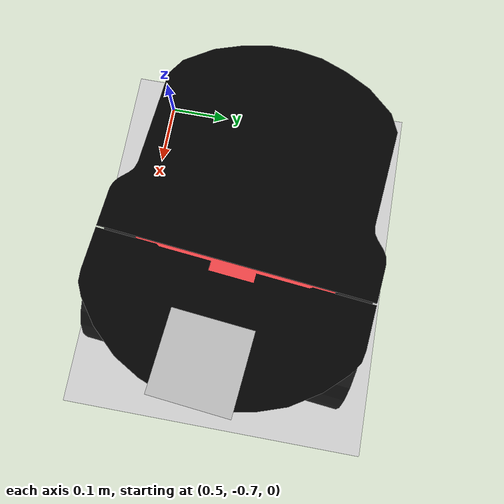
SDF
<sdf version="1.7">
 <world name="default">
  <model name="ground_plane">
   <static>1</static>
   <link name="link">
    <collision name="collision">
     <geometry><plane><normal>0 0 1</normal><size>100 100</size></plane></geometry>
     <surface>
      <contact><collide_bitmask>65535</collide_bitmask></contact>
      <friction><ode><mu>100</mu><mu2>50</mu2></ode></friction>
     </surface>
    </collision>
    <visual name="visual">
     <cast_shadows>0</cast_shadows>
     <geometry><plane><normal>0 0 1</normal><size>100 100</size></plane></geometry>
     <material>
      <script><uri>file://media/materials/scripts/gazebo.material</uri><name>Gazebo/Grey</name></script>
     </material>
    </visual>
   </link>
  </model>
  <light name="sun" type="directional">
   <pose>0 0 10 0 -0 0</pose>
   <diffuse>0.8 0.8 0.8 1</diffuse>
   <specular>0.2 0.2 0.2 1</specular>
   <attenuation>
    <range>1000</range>
    <constant>0.9</constant>
    <linear>0.01</linear>
    <quadratic>0.001</quadratic>
   </attenuation>
   <direction>-0.5 0.1 -0.9</direction>
   <spot><inner_angle>0</inner_angle><outer_angle>0</outer_angle><falloff>0</falloff></spot>
  </light>
  <model name="pioneer2dx">
   <pose>0.746747 -0.51605 -2e-06 1e-06 1.2e-05 -0.096164</pose>
   <frame name="pioneer2dx::__model__" attached_to="pioneer2dx::chassis">
    <pose relative_to="__model__">0 0 0 0 -0 0</pose>
   </frame>
   <link name="pioneer2dx::chassis">
    <pose relative_to="pioneer2dx::__model__">0 0 0.16 0 -0 0</pose>
    <inertial>
     <mass>5.67</mass>
     <inertia><ixx>0.07</ixx><iyy>0.08</iyy><izz>0.1</izz><ixy>0</ixy><ixz>0</ixz><iyz>0</iyz></inertia>
    </inertial>
    <collision name="collision"><geometry><box><size>0.445 0.277 0.17</size></box></geometry></collision>
    <collision name="castor_collision">
     <pose>-0.2 0 -0.12 0 -0 0</pose>
     <geometry><sphere><radius>0.04</radius></sphere></geometry>
     <surface><friction><ode><mu>0</mu><mu2>0</mu2><slip1>1</slip1><slip2>1</slip2></ode></friction></surface>
    </collision>
    <visual name="visual">
     <pose>0 0 0.04 0 -0 0</pose>
     <geometry><mesh><uri>model://pioneer2dx/meshes/chassis.dae</uri></mesh></geometry>
    </visual>
    <visual name="castor_visual">
     <pose>-0.2 0 -0.12 0 -0 0</pose>
     <geometry><sphere><radius>0.04</radius></sphere></geometry>
     <material>
      <script><uri>file://media/materials/scripts/gazebo.material</uri><name>Gazebo/FlatBlack</name></script>
     </material>
    </visual>
   </link>
   <link name="pioneer2dx::right_wheel">
    <pose relative_to="pioneer2dx::__model__">0.1 -0.17 0.11 -0 1.5707 1.5707</pose>
    <inertial>
     <mass>1.5</mass>
     <inertia><ixx>0.0051</ixx><iyy>0.0051</iyy><izz>0.009</izz><ixy>0</ixy><ixz>0</ixz><iyz>0</iyz></inertia>
    </inertial>
    <collision name="collision">
     <geometry><cylinder><radius>0.11</radius><length>0.05</length></cylinder></geometry>
     <surface>
      <friction><ode><mu>100000</mu><mu2>100000</mu2><slip1>0</slip1><slip2>0</slip2></ode></friction>
     </surface>
    </collision>
    <visual name="visual">
     <geometry><cylinder><radius>0.11</radius><length>0.05</length></cylinder></geometry>
     <material>
      <script><uri>file://media/materials/scripts/gazebo.material</uri><name>Gazebo/FlatBlack</name></script>
     </material>
    </visual>
   </link>
   <link name="pioneer2dx::left_wheel">
    <pose relative_to="pioneer2dx::__model__">0.1 0.17 0.11 -0 1.5707 1.5707</pose>
    <inertial>
     <mass>1.5</mass>
     <inertia><ixx>0.0051</ixx><iyy>0.0051</iyy><izz>0.009</izz><ixy>0</ixy><ixz>0</ixz><iyz>0</iyz></inertia>
    </inertial>
    <collision name="collision">
     <geometry><cylinder><radius>0.11</radius><length>0.05</length></cylinder></geometry>
     <surface>
      <friction><ode><mu>100000</mu><mu2>100000</mu2><slip1>0</slip1><slip2>0</slip2></ode></friction>
     </surface>
    </collision>
    <visual name="visual">
     <geometry><cylinder><radius>0.11</radius><length>0.05</length></cylinder></geometry>
     <material>
      <script><uri>file://media/materials/scripts/gazebo.material</uri><name>Gazebo/FlatBlack</name></script>
     </material>
    </visual>
   </link>
   <joint name="pioneer2dx::left_wheel_hinge" type="revolute">
    <pose>0 0 -0.03 0 -0 0</pose>
    <child>pioneer2dx::left_wheel</child>
    <parent>pioneer2dx::chassis</parent>
    <axis>
     <xyz expressed_in="pioneer2dx::__model__">0 1 0</xyz>
     <limit><lower>-1e+16</lower><upper>1e+16</upper></limit>
     <dynamics><spring_reference>0</spring_reference><spring_stiffness>0</spring_stiffness></dynamics>
    </axis>
   </joint>
   <joint name="pioneer2dx::right_wheel_hinge" type="revolute">
    <pose>0 0 0.03 0 -0 0</pose>
    <child>pioneer2dx::right_wheel</child>
    <parent>pioneer2dx::chassis</parent>
    <axis>
     <xyz expressed_in="pioneer2dx::__model__">0 1 0</xyz>
     <limit><lower>-1e+16</lower><upper>1e+16</upper></limit>
     <dynamics><spring_reference>0</spring_reference><spring_stiffness>0</spring_stiffness></dynamics>
    </axis>
   </joint>
   <plugin name="diff_drive" filename="libDiffDrivePlugin.so">
    <left_joint>pioneer2dx::left_wheel_hinge</left_joint>
    <right_joint>pioneer2dx::right_wheel_hinge</right_joint>
    <torque>5</torque>
   </plugin>
   <frame name="camera::__model__" attached_to="camera::link">
    <pose relative_to="__model__">0.2 0 0.3 0 -0 0</pose>
   </frame>
   <link name="camera::link">
    <inertial>
     <mass>0.1</mass>
     <inertia>
      <ixx>0.000166667</ixx>
      <iyy>0.000166667</iyy>
      <izz>0.000166667</izz>
      <ixy>0</ixy>
      <ixz>0</ixz>
      <iyz>0</iyz>
     </inertia>
    </inertial>
    <collision name="collision"><geometry><box><size>0.1 0.1 0.1</size></box></geometry></collision>
    <visual name="visual"><geometry><box><size>0.1 0.1 0.1</size></box></geometry></visual>
    <sensor name="camera" type="camera">
     <camera>
      <horizontal_fov>1.047</horizontal_fov>
      <image><width>320</width><height>240</height></image>
      <clip><near>0.1</near><far>100</far></clip>
     </camera>
     <plugin name="camera_plugin" filename="libgazebo_ros_camera.so">
      <always_on>1</always_on>
      <update_rate>10</update_rate>
      <imageTopicName>/irat_red/camera/image</imageTopicName>
      <cameraInfoTopicName>/irat_red/camera/camera_info</cameraInfoTopicName>
      <cameraName>my_cam</cameraName>
      <frameName>camera::__model__</frameName>
      <visualize>1</visualize>
     </plugin>
    </sensor>
    <pose relative_to="camera::__model__">0 0 0 0 -0 0</pose>
   </link>
   <joint name="camera_joint" type="revolute">
    <parent>pioneer2dx::pioneer2dx::chassis</parent>
    <child>pioneer2dx::camera::link</child>
    <axis>
     <xyz>0 0 1</xyz>
     <limit><lower>0</lower><upper>0</upper></limit>
     <dynamics><spring_reference>0</spring_reference><spring_stiffness>0</spring_stiffness></dynamics>
    </axis>
   </joint>
  </model>
  <gravity>0 0 -9.8</gravity>
  <magnetic_field>6e-06 2.3e-05 -4.2e-05</magnetic_field>
  <atmosphere type="adiabatic"/>
  <physics type="ode">
   <max_step_size>0.001</max_step_size>
   <real_time_factor>1</real_time_factor>
   <real_time_update_rate>1000</real_time_update_rate>
  </physics>
  <scene><ambient>0.4 0.4 0.4 1</ambient><background>0.7 0.7 0.7 1</background><shadows>1</shadows></scene>
  <spherical_coordinates>
   <surface_model>EARTH_WGS84</surface_model>
   <latitude_deg>0</latitude_deg>
   <longitude_deg>0</longitude_deg>
   <elevation>0</elevation>
   <heading_deg>0</heading_deg>
  </spherical_coordinates>
 </world>
</sdf>
